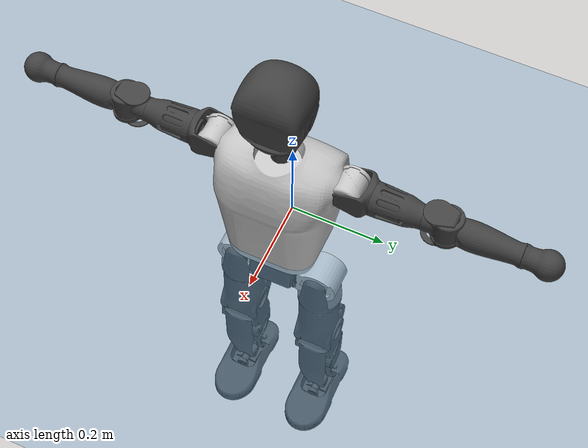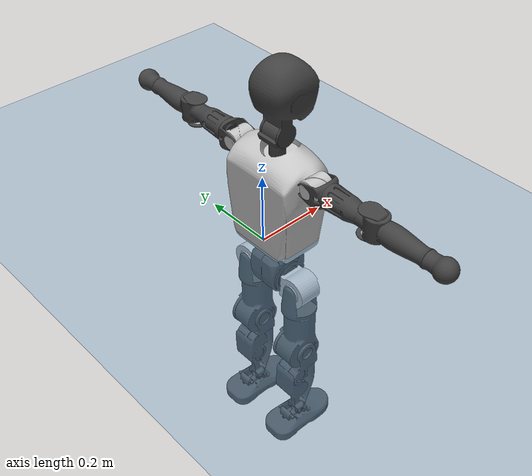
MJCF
<mujoco model="T1">
  <compiler angle="radian" assetdir="assets" balanceinertia="true" inertiafromgeom="false"/>

  <option timestep="0.005" density="1.2" viscosity="2e-05"/>

  <size nkey="1"/>

  <visual>
    <quality shadowsize="8192"/>
    <map shadowclip="0.5"/>
  </visual>

  <default>
    <default class="/">
      <joint armature="0.01" damping="0.01" frictionloss="0.1"/>
      <geom contype="0" conaffinity="0" group="1" solref="-1000 -80"/>
      <site size="0.01 0.005 0.005" group="5"/>
      <general forcelimited="true" biastype="affine" gainprm="25" biasprm="0 -25 -0.6"/>
      <default class="t1">
        <geom rgba="0.25 0.25 0.25 1"/>
        <default class="visual">
          <geom type="mesh" group="2"/>
        </default>
        <default class="collision">
          <geom group="3"/>
        </default>
        <default class="foot">
          <geom size="0.1115 0.05 0.015" type="box" condim="6" group="4" priority="1" solimp="0.015 1 0.015"/>
        </default>
        <default class="reward_collision_sphere">
          <geom group="5" rgba="1 0 0 1"/>
        </default>
      </default>
    </default>
  </default>

  <asset>
    <texture type="skybox" colorspace="auto" name="//unnamed_texture_0" builtin="gradient" rgb1="0.95 0.95 0.95" rgb2="0.95 0.95 0.95" width="100" height="600"/>
    <texture type="2d" colorspace="auto" name="texplane" builtin="checker" rgb1="0.345 0.575 0.748" rgb2="0.345 0.575 0.748" markrgb="1 1 1" width="512" height="512"/>
    <material name="MatPlane" class="/" texture="texplane" texuniform="true" texrepeat="2 2" specular="0.9"/>
    <mesh name="Trunk" class="/" file="Trunk.stl"/>
    <mesh name="H1" class="/" file="H1.stl"/>
    <mesh name="H2" class="/" file="H2.stl"/>
    <mesh name="AL1" class="/" file="AL1.stl"/>
    <mesh name="AL2" class="/" file="AL2.stl"/>
    <mesh name="AL3" class="/" file="AL3.stl"/>
    <mesh name="left_hand_link" class="/" file="left_hand_link.stl"/>
    <mesh name="AR1" class="/" file="AR1.stl"/>
    <mesh name="AR2" class="/" file="AR2.stl"/>
    <mesh name="AR3" class="/" file="AR3.stl"/>
    <mesh name="right_hand_link" class="/" file="right_hand_link.stl"/>
    <mesh name="Waist" class="/" file="Waist.stl"/>
    <mesh name="Hip_Pitch_Left" class="/" file="Hip_Pitch_Left.stl"/>
    <mesh name="Hip_Roll_Left" class="/" file="Hip_Roll_Left.stl"/>
    <mesh name="Hip_Yaw_Left" class="/" file="Hip_Yaw_Left.stl"/>
    <mesh name="Shank_Left" class="/" file="Shank_Left.stl"/>
    <mesh name="Ankle_Cross_Left" class="/" file="Ankle_Cross_Left.stl"/>
    <mesh name="left_foot_link" class="/" file="left_foot_link.stl"/>
    <mesh name="Hip_Pitch_Right" class="/" file="Hip_Pitch_Right.stl"/>
    <mesh name="Hip_Roll_Right" class="/" file="Hip_Roll_Right.stl"/>
    <mesh name="Hip_Yaw_Right" class="/" file="Hip_Yaw_Right.stl"/>
    <mesh name="Shank_Right" class="/" file="Shank_Right.stl"/>
    <mesh name="Ankle_Cross_Right" class="/" file="Ankle_Cross_Right.stl"/>
    <mesh name="right_foot_link" class="/" file="right_foot_link.stl"/>
  </asset>

  <worldbody>
    <geom name="floor" class="/" size="100 100 0.125" type="plane" group="0" material="MatPlane"/>
    <light name="toplight_shadow" class="/" pos="0 0 5" dir="0.0990148 0.0990148 -0.990148" type="directional" ambient="0.04 0.04 0.04" diffuse="0.55 0.55 0.55" specular="0.12 0.12 0.12"/>
    <light name="toplight_fill" class="/" pos="0 0 5" dir="0.0990148 0.0990148 -0.990148" type="directional" castshadow="false" ambient="0.04 0.04 0.04" diffuse="0.3 0.3 0.3" specular="0.08 0.08 0.08"/>
    <body name="trunk" childclass="t1" pos="0.00095015 -0.0010418 -0.000499728" quat="1 0.000122568 5.43707e-05 1.94744e-05">
      <inertial pos="0.0421611 0.000444607 0.108039" quat="0.999959 -6.55924e-05 -0.00901182 2.53853e-05" mass="7.94697" diaginertia="0.0245157 0.0370511 0.0654119"/>
      <joint name="//unnamed_joint_0" type="free" armature="0" damping="0" frictionloss="0"/>
      <geom name="//unnamed_geom_1" class="visual" rgba="0.76 0.76 0.76 1" mesh="Trunk"/>
      <geom name="//unnamed_geom_2" class="collision" size="0.0667071 0.0889428 0.133414" pos="0.0462107 0 0.124265" type="box"/>
      <geom name="//unnamed_geom_3" class="reward_collision_sphere" size="0.102284" pos="0.0462107 0 0.103554"/>
      <geom name="//unnamed_geom_4" class="reward_collision_sphere" size="0.0133414" pos="0.0462107 0.0733179 0"/>
      <geom name="//unnamed_geom_5" class="reward_collision_sphere" size="0.0133414" pos="0.0462107 -0.0733179 0"/>
      <geom name="//unnamed_geom_6" class="reward_collision_sphere" size="0.0133414" pos="0.0462107 0.0922944 0.186398"/>
      <geom name="//unnamed_geom_7" class="reward_collision_sphere" size="0.0133414" pos="0.0462107 -0.0922944 0.186398"/>
      <site name="imu" pos="-7.22685e-05 -0.00833554 0.000908899" size="0.00889428"/>
      <camera name="track" pos="0 -1.72513 0" quat="0.707107 0.707107 0 0" mode="trackcom"/>
      <camera name="ego_camera" pos="0.0939618 0 0.434928" quat="-0.5 -0.5 0.5 0.5"/>
      <body name="H1" pos="0.046999 -0.000458373 0.250929" quat="1 0.000212772 0.000242013 3.09667e-05">
        <inertial pos="-0.00188771 -0.0013251 0.0592457" quat="0.760116 -0.0225213 0.00586568 0.649371" mass="0.308307" diaginertia="6.49934e-05 0.000106532 0.000177927"/>
        <joint name="AAHead_yaw" pos="0 0 0" axis="-0.000763255 -0.0083389 0.999965" stiffness="0.00321086" range="-1.5722 1.57155" armature="0.00871534" damping="0.00953379" frictionloss="0.0869001"/>
        <geom name="//unnamed_geom_8" class="visual" mesh="H1"/>
        <body name="H2" pos="0.000574726 -0.00015518 0.0633826" quat="1 -3.76195e-05 0.000177914 0.000202456">
          <inertial pos="0.00560755 -0.00142106 0.102229" quat="0.988483 0.105287 -0.0758356 -0.0778751" mass="0.439236" diaginertia="0.00054818 0.00088272 0.00203878"/>
          <joint name="Head_pitch" pos="0 0 0" axis="-0.00391767 -0.999986 0.00347217" range="-1.22176 0.338333" armature="0.00879804" damping="0.00452565" frictionloss="0.093432"/>
          <geom name="//unnamed_geom_9" class="visual" mesh="H2"/>
          <geom name="//unnamed_geom_10" class="collision" size="0.0711543" pos="0.00770179 0 0.11391"/>
          <geom name="//unnamed_geom_11" class="reward_collision_sphere" size="0.0800485" pos="0.0154036 0 0.103554"/>
        </body>
      </body>
      <body name="AL1" pos="0.0464537 0.0928859 0.226695" quat="1 -0.00010139 7.75004e-05 0.000125012">
        <inertial pos="-0.000351081 0.0378421 -0.00217284" quat="0.512416 0.491655 -0.502036 0.493624" mass="0.384492" diaginertia="0.000381734 0.000631837 0.000359179"/>
        <joint name="Left_Shoulder_Pitch" pos="0 0 0" axis="-0.00850504 0.999956 -0.00393581" range="-3.30459 1.23961" armature="0.00923739" damping="0.00714646" frictionloss="0.0901598"/>
        <geom name="//unnamed_geom_12" class="visual" rgba="0.76 0.76 0.76 1" mesh="AL1"/>
        <body name="AL2" pos="0.000418833 0.0406556 -0.000929837" quat="0.999999 0.00105307 -0.000110173 -0.000302878">
          <inertial pos="0.00361913 0.0302953 -0.000389524" quat="0.48806 0.511127 -0.488176 0.512085" mass="0.111386" diaginertia="0.000109429 0.00016572 0.000208165"/>
          <joint name="Left_Shoulder_Roll" pos="0 0 0" axis="-0.999949 -0.00789737 0.0062467" range="-1.53655 1.75628" armature="0.00935259" damping="0" frictionloss="0.0966025"/>
          <geom name="//unnamed_geom_13" class="visual" mesh="AL2"/>
          <body name="AL3" pos="0.00143374 0.0548847 0.000129909" quat="1 0.000591505 -0.000588048 -9.94866e-05">
            <inertial pos="-0.000637973 0.0723182 0.000821447" quat="0.70759 0.706623 1.624e-05 -0.000532826" mass="0.744499" diaginertia="0.00350408 0.00626419 0.000724035"/>
            <joint name="Left_Elbow_Pitch" pos="0 0 0" axis="-0.0046739 -0.999989 5.015e-05" range="-2.2262 2.22518" armature="0.00975153" damping="0" frictionloss="0.0922796"/>
            <geom name="//unnamed_geom_14" class="visual" mesh="AL3"/>
            <geom name="//unnamed_geom_15" class="collision" size="0.0266828 0.0667071" pos="0 0.0431282 0" quat="0.707105 0.707108 0 0" type="cylinder"/>
            <geom name="//unnamed_geom_16" class="reward_collision_sphere" size="0.0320194"/>
            <body name="left_hand_link" pos="9.49491e-05 0.126896 -0.00105477" quat="1 -5.66123e-05 6.56161e-05 2.84622e-05">
              <inertial pos="-6.97429e-05 0.0941239 -0.000604051" quat="0.709031 0.705177 0.000373439 -0.000726605" mass="0.229261" diaginertia="0.00219203 0.00388205 0.000254517"/>
              <joint name="Left_Elbow_Yaw" pos="0 0 0" axis="0.00208167 0.00303066 0.999993" range="-2.44831 -0.00182149" armature="0.00936006" damping="0.0113424" frictionloss="0.0877057"/>
              <geom name="//unnamed_geom_17" class="visual" mesh="left_hand_link"/>
              <geom name="//unnamed_geom_18" class="collision" size="0.0266828 0.077825" pos="0 0.112133 0" quat="0.707105 0.707108 0 0" type="cylinder"/>
              <geom name="//unnamed_geom_19" class="reward_collision_sphere" size="0.0444714"/>
              <geom name="//unnamed_geom_20" class="reward_collision_sphere" size="0.03113" pos="0 0.0948821 0"/>
              <geom name="//unnamed_geom_21" class="reward_collision_sphere" size="0.03113" pos="0 0.185451 0"/>
            </body>
          </body>
        </body>
      </body>
      <body name="AR1" pos="0.0440894 -0.0922738 0.226366" quat="1 -9.06944e-06 0.000362776 0.00011485">
        <inertial pos="-0.000760299 -0.0407566 0.00175155" quat="0.503674 0.495773 -0.504484 0.496002" mass="0.372363" diaginertia="0.000364147 0.000611544 0.000349768"/>
        <joint name="Right_Shoulder_Pitch" pos="0 0 0" axis="-0.00115482 -0.999999 0.000684838" range="-1.20842 3.3072" armature="0.00898946" damping="0.00124764" frictionloss="0.0869232"/>
        <geom name="//unnamed_geom_22" class="visual" rgba="0.76 0.76 0.76 1" mesh="AR1"/>
        <body name="AR2" pos="-0.000488622 -0.0384162 0.000584319" quat="1 -1.75411e-05 -8.6181e-05 0.000150725">
          <inertial pos="0.00282626 -0.0327878 -0.00163215" quat="0.512755 0.486905 -0.51263 0.487049" mass="0.110568" diaginertia="0.000107062 0.000158999 0.000204303"/>
          <joint name="Right_Shoulder_Roll" pos="0 0 0" axis="-0.999956 -0.00765381 -0.00540039" stiffness="0.00809027" range="-1.72171 1.60436" armature="0.00901477" damping="0" frictionloss="0.0896629"/>
          <geom name="//unnamed_geom_23" class="visual" mesh="AR2"/>
          <body name="AR3" pos="0.000101913 -0.0530308 0.000238814" quat="1 -0.000152287 -6.61075e-07 1.825e-05">
            <inertial pos="-0.00139955 -0.0732249 -0.000114616" quat="0.707696 0.706516 -0.000390845 0.000543657" mass="0.713084" diaginertia="0.00344359 0.00606971 0.000726125"/>
            <joint name="Right_Elbow_Pitch" pos="0 0 0" axis="0.00464128 0.999985 0.00305445" range="-2.2771 2.26352" armature="0.00973412" damping="0.00956303" frictionloss="0.080958"/>
            <geom name="//unnamed_geom_24" class="visual" mesh="AR3"/>
            <geom name="//unnamed_geom_25" class="collision" size="0.0266828 0.0667071" pos="0 -0.0431282 0" quat="0.707105 0.707108 0 0" type="cylinder"/>
            <geom name="//unnamed_geom_26" class="reward_collision_sphere" size="0.0320194"/>
            <body name="right_hand_link" pos="-0.000803258 -0.126338 -0.000443385" quat="1 -0.00011351 -3.62676e-05 4.47413e-05">
              <inertial pos="8.476e-05 -0.0949567 -0.00138207" quat="0.702924 0.711201 -0.00927749 0.00224296" mass="0.237847" diaginertia="0.00216744 0.00388408 0.000256019"/>
              <joint name="Right_Elbow_Yaw" pos="0 0 0" axis="-0.00188058 -0.00187132 0.999996" range="-0.0375641 2.48182" armature="0.00887993" damping="0.0126048" frictionloss="0.0849722"/>
              <geom name="//unnamed_geom_27" class="visual" mesh="right_hand_link"/>
              <geom name="//unnamed_geom_28" class="collision" size="0.0266828 0.077825" pos="0 -0.112133 0" quat="0.707105 0.707108 0 0" type="cylinder"/>
              <geom name="//unnamed_geom_29" class="reward_collision_sphere" size="0.0444714"/>
              <geom name="//unnamed_geom_30" class="reward_collision_sphere" size="0.03113" pos="0 -0.0948821 0"/>
              <geom name="//unnamed_geom_31" class="reward_collision_sphere" size="0.03113" pos="0 -0.185451 0"/>
            </body>
          </body>
        </body>
      </body>
      <body name="Waist" pos="0.0474314 -0.00124312 -0.119318" quat="1 -6.60487e-05 -0.000334516 1.92332e-05">
        <inertial pos="0.000655835 -0.000858398 0.00715574" quat="0.983623 -0.00178103 -0.180225 0.00123206" mass="1.81905" diaginertia="0.00143708 0.00251652 0.0056563"/>
        <joint name="Waist" pos="0 0 0" axis="-0.00769162 0.00326356 0.999965" range="-1.57466 1.55995" armature="0.00841692" damping="0.0194735" frictionloss="0.0830355"/>
        <geom name="//unnamed_geom_32" class="visual" mesh="Waist"/>
        <body name="Hip_Pitch_Left" pos="0.000899081 0.0927251 0.000924833" quat="1 -0.000234122 2.59072e-05 0.000254618">
          <inertial pos="0.00288863 -0.0073064 -0.0206842" quat="0.975185 0.221356 0.00390163 -0.000124936" mass="0.719556" diaginertia="0.000490756 0.000692363 0.0014706"/>
          <joint name="Left_Hip_Pitch" pos="0 0 0" axis="0.00105764 0.999994 0.00316723" range="-1.79697 1.60682" armature="0.00863947" damping="0" frictionloss="0.0894923"/>
          <geom name="//unnamed_geom_33" class="visual" rgba="0.76 0.76 0.76 1" mesh="Hip_Pitch_Left"/>
          <body name="Hip_Roll_Left" pos="0.00147621 -0.00113271 -0.0193747" quat="1 -1.36525e-07 -7.54576e-09 2.28356e-07">
            <inertial pos="0.000988787 0.00120933 -0.0554963" quat="0.706894 -0.00436126 -0.00774913 0.707263" mass="0.259486" diaginertia="0.000470577 0.000694483 0.000594865"/>
            <joint name="Left_Hip_Roll" pos="0 0 0" axis="-0.999979 0.00351804 -0.00544957" range="-1.56295 0.184676" armature="0.00911024" damping="0.0085757" frictionloss="0.0868558"/>
            <geom name="//unnamed_geom_34" class="visual" mesh="Hip_Roll_Left"/>
            <geom name="//unnamed_geom_35" class="reward_collision_sphere" size="0.0489186"/>
            <body name="Hip_Yaw_Left" pos="0.00138533 0.000370035 -0.0846822" quat="1 2.91723e-05 7.0349e-05 2.35523e-05">
              <inertial pos="-0.00529252 -0.0002759 -0.0928575" quat="0.689629 -0.0360635 -0.0300208 0.722641" mass="1.51746" diaginertia="0.00702941 0.0121774 0.00315167"/>
              <joint name="Left_Hip_Yaw" pos="0 0 0" axis="0.00187747 0.0064604 -0.999977" range="-1.02135 0.989028" armature="0.00869618" damping="0.00359529" frictionloss="0.0878873"/>
              <geom name="//unnamed_geom_36" class="visual" mesh="Hip_Yaw_Left"/>
              <geom name="//unnamed_geom_37" class="collision" size="0.0444714 0.0711543" type="cylinder"/>
              <body name="Shank_Left" pos="-0.00954475 0.00153635 -0.1409" quat="1 -5.63805e-05 2.35151e-05 -0.000201244">
                <inertial pos="-0.00511871 -0.00170797 -0.128742" quat="0.997675 0.00145075 -0.023865 0.0638176" mass="1.2116" diaginertia="0.00961946 0.016497 0.00226306"/>
                <joint name="Left_Knee_Pitch" pos="0 0 0" axis="0.00102648 0.999997 0.00240302" range="-0.0126324 2.33787" armature="0.00846769" damping="0.00716924" frictionloss="0.0998019"/>
                <geom name="//unnamed_geom_38" class="visual" mesh="Shank_Left"/>
                <geom name="//unnamed_geom_39" class="collision" size="0.0444714 0.0667071" pos="0 0 -0.124265" type="cylinder"/>
                <geom name="//unnamed_geom_40" class="reward_collision_sphere" size="0.0578128"/>
                <body name="Ankle_Cross_Left" pos="-0.00137893 -0.00108584 -0.290642" quat="1 -1.06811e-05 -3.70823e-05 -2.17457e-05">
                  <inertial pos="-0.00304885 -0.000261663 -0.00856351" quat="0.443613 0.550602 0.551282 0.442869" mass="0.0496176" diaginertia="7.71372e-06 1.15544e-05 1.30418e-05"/>
                  <joint name="Left_Ankle_Pitch" pos="0 0 0" axis="0.00798166 0.999926 -0.00917199" range="-0.849965 0.36422" armature="0.00882685" damping="0.010015" frictionloss="0.0921947"/>
                  <geom name="//unnamed_geom_41" class="visual" mesh="Ankle_Cross_Left"/>
                  <body name="left_foot_link" pos="-0.00096396 -0.000423588 -0.0125611" quat="0.999999 -0.000398292 -0.00109954 -6.99103e-06">
                    <inertial pos="0.00171363 -4.08298e-05 -0.00842355" quat="-0.00209866 0.620158 -0.00518319 0.784457" mass="0.474123" diaginertia="0.000723351 0.00112851 0.00255202"/>
                    <joint name="Left_Ankle_Roll" pos="0 0 0" axis="-0.999996 0.000876775 -0.00285373" stiffness="0.00179747" range="-0.433789 0.449209" armature="0.00893429" damping="0.00344277" frictionloss="0.0844172"/>
                    <geom name="//unnamed_geom_42" class="visual" mesh="left_foot_link"/>
                    <geom name="left_foot" class="foot" size="0.104592 0.0430891 0.0123687" pos="0.00770179 0 -0.0155331"/>
                    <geom name="//unnamed_geom_44" class="reward_collision_sphere" size="0.0462503" pos="0.00770179 0 -0.0155331"/>
                    <geom name="//unnamed_geom_45" class="reward_collision_sphere" size="0.0266828" pos="0.073167 -0.019839 -0.0155331"/>
                    <geom name="//unnamed_geom_46" class="reward_collision_sphere" size="0.0266828" pos="-0.0539125 -0.019839 -0.0155331"/>
                    <site name="left_foot" class="foot" pos="0.00770179 0 -0.0155331" size="0.00889428"/>
                  </body>
                </body>
              </body>
            </body>
          </body>
        </body>
        <body name="Hip_Pitch_Right" pos="-0.00154726 -0.0910235 0.000624175" quat="1 -6.5338e-05 3.61743e-05 -0.000486099">
          <inertial pos="0.000733215 0.00752614 -0.0173033" quat="0.973034 -0.230105 0.0157488 -0.00306072" mass="0.729303" diaginertia="0.000492921 0.000703112 0.00149472"/>
          <joint name="Right_Hip_Pitch" pos="0 0 0" axis="-0.00155613 -0.999992 0.00377981" stiffness="0.00299878" range="-1.56916 1.78711" armature="0.00865261" damping="0.00302275" frictionloss="0.0914344"/>
          <geom name="//unnamed_geom_47" class="visual" rgba="0.76 0.76 0.76 1" mesh="Hip_Pitch_Right"/>
          <body name="Hip_Roll_Right" pos="0.00118706 0.000629102 -0.0198772" quat="1 -4.75792e-05 5.46531e-05 -9.03124e-05">
            <inertial pos="-0.000262062 0.000312835 -0.056519" quat="0.708412 -0.00383136 -0.00537912 0.705768" mass="0.275327" diaginertia="0.000474366 0.000723156 0.000618872"/>
            <joint name="Right_Hip_Roll" pos="0 0 0" axis="-0.999997 -0.0022788 0.00106898" stiffness="0.000186162" range="-0.199451 1.57695" armature="0.00863653" damping="0.00751061" frictionloss="0.0913669"/>
            <geom name="//unnamed_geom_48" class="visual" mesh="Hip_Roll_Right"/>
            <geom name="//unnamed_geom_49" class="reward_collision_sphere" size="0.0489186"/>
            <body name="Hip_Yaw_Right" pos="0.000437418 -0.000474333 -0.0847756" quat="1 6.84709e-05 -0.000173754 -0.000240906">
              <inertial pos="-0.00479974 -0.00195767 -0.0904313" quat="0.714294 -0.0306348 -0.0345067 0.698322" mass="1.57075" diaginertia="0.00703223 0.012473 0.00309716"/>
              <joint name="Right_Hip_Yaw" pos="0 0 0" axis="-0.00231025 -0.00320286 -0.999992" stiffness="0.00810287" range="-0.99995 1.00678" armature="0.00792767" damping="0.00558428" frictionloss="0.0901396"/>
              <geom name="//unnamed_geom_50" class="visual" mesh="Hip_Yaw_Right"/>
              <geom name="//unnamed_geom_51" class="collision" size="0.0444714 0.0711543" type="cylinder"/>
              <body name="Shank_Right" pos="-0.00861901 -0.000989694 -0.138103" quat="1 2.56357e-05 1.06893e-05 3.64016e-05">
                <inertial pos="-0.00257531 0.00215535 -0.128038" quat="0.999145 0.000584946 -0.0259646 -0.0321818" mass="1.2951" diaginertia="0.0100892 0.017369 0.00241637"/>
                <joint name="Right_Knee_Pitch" pos="0 0 0" axis="-0.00252395 -0.999995 0.00190486" range="-2.34039 -0.000206944" armature="0.00851578" damping="0.00829496" frictionloss="0.0857323"/>
                <geom name="//unnamed_geom_52" class="visual" mesh="Shank_Right"/>
                <geom name="//unnamed_geom_53" class="collision" size="0.0444714 0.0667071" pos="0 0 -0.124265" type="cylinder"/>
                <geom name="//unnamed_geom_54" class="reward_collision_sphere" size="0.0578128"/>
                <body name="Ankle_Cross_Right" pos="0.0002629 -0.00157563 -0.290202" quat="1 2.32306e-05 0.000228115 -0.000281112">
                  <inertial pos="-0.00382986 3.18283e-05 -0.00826298" quat="0.440592 0.55116 0.552204 0.444041" mass="0.0508019" diaginertia="7.91941e-06 1.21982e-05 1.35438e-05"/>
                  <joint name="Right_Ankle_Pitch" pos="0 0 0" axis="-0.0128919 -0.999915 -0.00188403" range="-0.329389 0.87352" armature="0.00873709" damping="0.00585093" frictionloss="0.0846175"/>
                  <geom name="//unnamed_geom_55" class="visual" mesh="Ankle_Cross_Right"/>
                  <body name="right_foot_link" pos="0.000108095 -0.00216162 -0.0115729" quat="1 -5.07021e-05 6.86306e-06 -0.000141491">
                    <inertial pos="0.00213957 0.000155517 -0.00930452" quat="-6.58847e-05 0.62393 0.000464596 0.78148" mass="0.485175" diaginertia="0.000752581 0.00113158 0.00262513"/>
                    <joint name="Right_Ankle_Roll" pos="0 0 0" axis="-0.999967 0.00774938 0.00258988" range="-0.439996 0.459313" armature="0.00847213" damping="0.00442631" frictionloss="0.0802994"/>
                    <geom name="//unnamed_geom_56" class="visual" mesh="right_foot_link"/>
                    <geom name="right_foot" class="foot" size="0.0991469 0.0429091 0.013375" pos="0.00770179 0 -0.0155331"/>
                    <geom name="//unnamed_geom_58" class="reward_collision_sphere" size="0.0355771"/>
                    <geom name="//unnamed_geom_59" class="reward_collision_sphere" size="0.0266828" pos="0.00770179 0 -0.0155331"/>
                    <geom name="//unnamed_geom_60" class="reward_collision_sphere" size="0.0266828" pos="0.073167 0.019839 -0.0155331"/>
                    <geom name="//unnamed_geom_61" class="reward_collision_sphere" size="0.0266828" pos="-0.0539125 0.019839 -0.0155331"/>
                    <site name="right_foot" class="foot" pos="0.00770179 0 -0.0155331" size="0.00889428"/>
                  </body>
                </body>
              </body>
            </body>
          </body>
        </body>
      </body>
    </body>
  </worldbody>

  <contact>
    <pair class="/" geom1="floor" geom2="left_foot" name="//unnamed_contact_0"/>
    <pair class="/" geom1="floor" geom2="right_foot" name="//unnamed_contact_1"/>
  </contact>

  <actuator>
    <general name="AAHead_yaw" class="/" joint="AAHead_yaw" forcerange="-5.86068 5.86068" gainprm="22.6999" biasprm="0 -22.6999 -0.515635"/>
    <general name="Head_pitch" class="/" joint="Head_pitch" forcerange="-5.98804 5.98804" gainprm="22.6999" biasprm="0 -22.6999 -0.515635"/>
    <general name="Left_Shoulder_Pitch" class="/" joint="Left_Shoulder_Pitch" forcerange="-15.8154 15.8154" gainprm="22.6999" biasprm="0 -22.6999 -0.515635"/>
    <general name="Left_Shoulder_Roll" class="/" joint="Left_Shoulder_Roll" forcerange="-15.3286 15.3286" gainprm="22.6999" biasprm="0 -22.6999 -0.515635"/>
    <general name="Left_Elbow_Pitch" class="/" joint="Left_Elbow_Pitch" forcerange="-16.6322 16.6322" gainprm="22.6999" biasprm="0 -22.6999 -0.515635"/>
    <general name="Left_Elbow_Yaw" class="/" joint="Left_Elbow_Yaw" forcerange="-17.4866 17.4866" gainprm="22.6999" biasprm="0 -22.6999 -0.515635"/>
    <general name="Right_Shoulder_Pitch" class="/" joint="Right_Shoulder_Pitch" forcerange="-16.0759 16.0759" gainprm="22.6999" biasprm="0 -22.6999 -0.515635"/>
    <general name="Right_Shoulder_Roll" class="/" joint="Right_Shoulder_Roll" forcerange="-16.5678 16.5678" gainprm="22.6999" biasprm="0 -22.6999 -0.515635"/>
    <general name="Right_Elbow_Pitch" class="/" joint="Right_Elbow_Pitch" forcerange="-16.0305 16.0305" gainprm="22.6999" biasprm="0 -22.6999 -0.515635"/>
    <general name="Right_Elbow_Yaw" class="/" joint="Right_Elbow_Yaw" forcerange="-15.4315 15.4315" gainprm="22.6999" biasprm="0 -22.6999 -0.515635"/>
    <general name="Waist" class="/" joint="Waist" forcerange="-26.8279 26.8279" gainprm="22.6999" biasprm="0 -22.6999 -0.515635"/>
    <general name="Left_Hip_Pitch" class="/" joint="Left_Hip_Pitch" forcerange="-39.7063 39.7063" gainprm="22.6999" biasprm="0 -22.6999 -0.515635"/>
    <general name="Left_Hip_Roll" class="/" joint="Left_Hip_Roll" forcerange="-26.4253 26.4253" gainprm="22.6999" biasprm="0 -22.6999 -0.515635"/>
    <general name="Left_Hip_Yaw" class="/" joint="Left_Hip_Yaw" forcerange="-25.7007 25.7007" gainprm="22.6999" biasprm="0 -22.6999 -0.515635"/>
    <general name="Left_Knee_Pitch" class="/" joint="Left_Knee_Pitch" forcerange="-52.903 52.903" gainprm="22.6999" biasprm="0 -22.6999 -0.515635"/>
    <general name="Left_Ankle_Pitch" class="/" joint="Left_Ankle_Pitch" forcerange="-17.2182 17.2182" gainprm="22.6999" biasprm="0 -22.6999 -0.515635"/>
    <general name="Left_Ankle_Roll" class="/" joint="Left_Ankle_Roll" forcerange="-13.3116 13.3116" gainprm="22.6999" biasprm="0 -22.6999 -0.515635"/>
    <general name="Right_Hip_Pitch" class="/" joint="Right_Hip_Pitch" forcerange="-39.3274 39.3274" gainprm="22.6999" biasprm="0 -22.6999 -0.515635"/>
    <general name="Right_Hip_Roll" class="/" joint="Right_Hip_Roll" forcerange="-26.6273 26.6273" gainprm="22.6999" biasprm="0 -22.6999 -0.515635"/>
    <general name="Right_Hip_Yaw" class="/" joint="Right_Hip_Yaw" forcerange="-27.0341 27.0341" gainprm="22.6999" biasprm="0 -22.6999 -0.515635"/>
    <general name="Right_Knee_Pitch" class="/" joint="Right_Knee_Pitch" forcerange="-54.4753 54.4753" gainprm="22.6999" biasprm="0 -22.6999 -0.515635"/>
    <general name="Right_Ankle_Pitch" class="/" joint="Right_Ankle_Pitch" forcerange="-17.2465 17.2465" gainprm="22.6999" biasprm="0 -22.6999 -0.515635"/>
    <general name="Right_Ankle_Roll" class="/" joint="Right_Ankle_Roll" forcerange="-13.2608 13.2608" gainprm="22.6999" biasprm="0 -22.6999 -0.515635"/>
  </actuator>

  <sensor>
    <gyro site="imu" name="imu_angular_velocity"/>
    <velocimeter site="imu" name="imu_linear_velocity"/>
    <framelinvel objtype="site" objname="left_foot" name="left_foot_global_linear_velocity"/>
    <framelinvel objtype="site" objname="right_foot" name="right_foot_global_linear_velocity"/>
  </sensor>

  <keyframe>
    <key name="home" qpos="0 0 0.6385 1 0 0 0 0 0 0 1.4 0 -0.4 0 -1.4 0 0.4 0 -0.4 0 0 0.8 -0.4 0 0.4 0 0 -0.8 0.4 0"/>
  </keyframe>
</mujoco>
